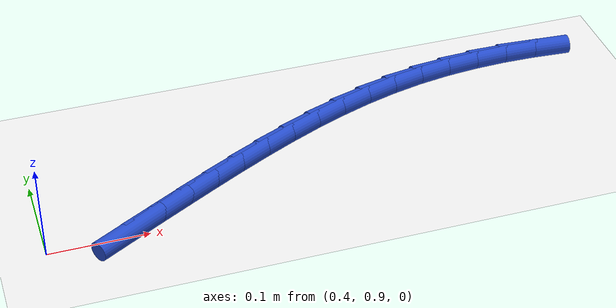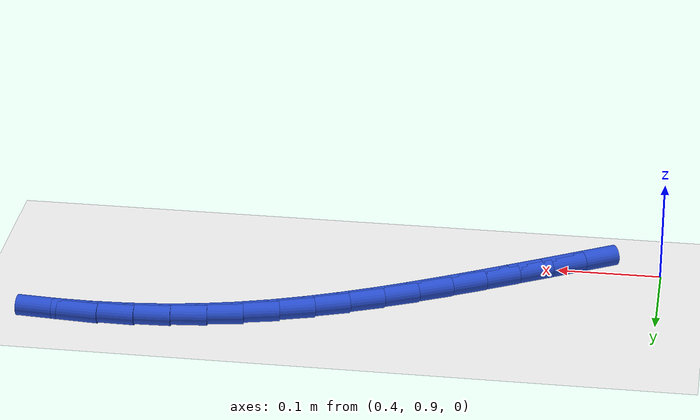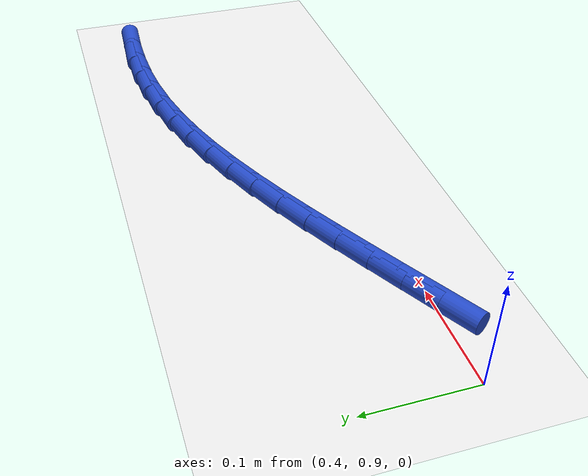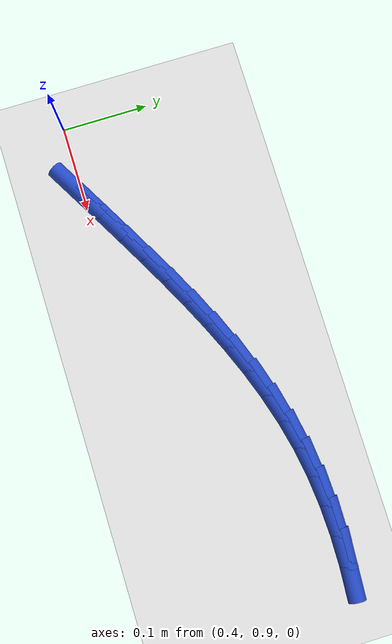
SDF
<sdf version="1.6">
 <world name="default">
  <model name="ground_plane">
   <static>1</static>
   <link name="link">
    <collision name="collision">
     <geometry><plane><normal>0 0 1</normal><size>100 100</size></plane></geometry>
     <surface><friction><ode><mu>100</mu><mu2>50</mu2></ode></friction></surface>
    </collision>
    <visual name="visual">
     <cast_shadows>0</cast_shadows>
     <geometry><plane><normal>0 0 1</normal><size>100 100</size></plane></geometry>
     <material>
      <script><uri>file://media/materials/scripts/gazebo.material</uri><name>Gazebo/WhiteGlow</name></script>
     </material>
    </visual>
   </link>
  </model>
  <model name="line">
   <link name="link_31">
    <pose>0.4807219952025956 0.8978425012995228 0.01 0 1.57 0.5152334188689925</pose>
    <collision name="collision">
     <geometry><cylinder><radius>0.01</radius><length>0.08</length></cylinder></geometry>
    </collision>
    <visual name="visual">
     <material>
      <script><name>Gazebo/Blue</name><uri>file://media/materials/scripts/gazebo.material</uri></script>
     </material>
     <geometry><cylinder><radius>0.01</radius><length>0.08</length></cylinder></geometry>
    </visual>
   </link>
   <link name="link_32">
    <pose>0.5114015382797108 0.9152147868484983 0.01 0 1.57 0.5079189197216724</pose>
    <collision name="collision">
     <geometry><cylinder><radius>0.01</radius><length>0.08</length></cylinder></geometry>
    </collision>
    <visual name="visual">
     <material>
      <script><name>Gazebo/Blue</name><uri>file://media/materials/scripts/gazebo.material</uri></script>
     </material>
     <geometry><cylinder><radius>0.01</radius><length>0.08</length></cylinder></geometry>
    </visual>
   </link>
   <link name="link_33">
    <pose>0.5422114681492941 0.9323645081079053 0.01 0 1.57 0.5029805812934454</pose>
    <collision name="collision">
     <geometry><cylinder><radius>0.01</radius><length>0.08</length></cylinder></geometry>
    </collision>
    <visual name="visual">
     <material>
      <script><name>Gazebo/Blue</name><uri>file://media/materials/scripts/gazebo.material</uri></script>
     </material>
     <geometry><cylinder><radius>0.01</radius><length>0.08</length></cylinder></geometry>
    </visual>
   </link>
   <link name="link_34">
    <pose>0.5730522624212273 0.9493324635605214 0.01 0 1.57 0.492822098935053</pose>
    <collision name="collision">
     <geometry><cylinder><radius>0.01</radius><length>0.08</length></cylinder></geometry>
    </collision>
    <visual name="visual">
     <material>
      <script><name>Gazebo/Blue</name><uri>file://media/materials/scripts/gazebo.material</uri></script>
     </material>
     <geometry><cylinder><radius>0.01</radius><length>0.08</length></cylinder></geometry>
    </visual>
   </link>
   <link name="link_35">
    <pose>0.6039614878840294 0.9659312930227029 0.01 0 1.57 0.47595645030181616</pose>
    <collision name="collision">
     <geometry><cylinder><radius>0.01</radius><length>0.08</length></cylinder></geometry>
    </collision>
    <visual name="visual">
     <material>
      <script><name>Gazebo/Blue</name><uri>file://media/materials/scripts/gazebo.material</uri></script>
     </material>
     <geometry><cylinder><radius>0.01</radius><length>0.08</length></cylinder></geometry>
    </visual>
   </link>
   <link name="link_36">
    <pose>0.6350017367816518 0.9819319862360545 0.01 0 1.57 0.45222671723746927</pose>
    <collision name="collision">
     <geometry><cylinder><radius>0.01</radius><length>0.08</length></cylinder></geometry>
    </collision>
    <visual name="visual">
     <material>
      <script><name>Gazebo/Blue</name><uri>file://media/materials/scripts/gazebo.material</uri></script>
     </material>
     <geometry><cylinder><radius>0.01</radius><length>0.08</length></cylinder></geometry>
    </visual>
   </link>
   <link name="link_37">
    <pose>0.6662356013580458 0.9971055329421803 0.01 0 1.57 0.4214496296331358</pose>
    <collision name="collision">
     <geometry><cylinder><radius>0.01</radius><length>0.08</length></cylinder></geometry>
    </collision>
    <visual name="visual">
     <material>
      <script><name>Gazebo/Blue</name><uri>file://media/materials/scripts/gazebo.material</uri></script>
     </material>
     <geometry><cylinder><radius>0.01</radius><length>0.08</length></cylinder></geometry>
    </visual>
   </link>
   <link name="link_38">
    <pose>0.6977256738571628 1.0112229228826846 0.01 0 1.57 0.383448130057976</pose>
    <collision name="collision">
     <geometry><cylinder><radius>0.01</radius><length>0.08</length></cylinder></geometry>
    </collision>
    <visual name="visual">
     <material>
      <script><name>Gazebo/Blue</name><uri>file://media/materials/scripts/gazebo.material</uri></script>
     </material>
     <geometry><cylinder><radius>0.01</radius><length>0.08</length></cylinder></geometry>
    </visual>
   </link>
   <link name="link_39">
    <pose>0.7295345465229549 1.0240551457991727 0.01 0 1.57 0.3380980717340698</pose>
    <collision name="collision">
     <geometry><cylinder><radius>0.01</radius><length>0.08</length></cylinder></geometry>
    </collision>
    <visual name="visual">
     <material>
      <script><name>Gazebo/Blue</name><uri>file://media/materials/scripts/gazebo.material</uri></script>
     </material>
     <geometry><cylinder><radius>0.01</radius><length>0.08</length></cylinder></geometry>
    </visual>
   </link>
   <link name="link_40">
    <pose>0.7617248115993724 1.0353731914332478 0.01 0 1.57 0.2853899355566183</pose>
    <collision name="collision">
     <geometry><cylinder><radius>0.01</radius><length>0.08</length></cylinder></geometry>
    </collision>
    <visual name="visual">
     <material>
      <script><name>Gazebo/Blue</name><uri>file://media/materials/scripts/gazebo.material</uri></script>
     </material>
     <geometry><cylinder><radius>0.01</radius><length>0.08</length></cylinder></geometry>
    </visual>
   </link>
   <link name="link_41">
    <pose>0.7943590613303679 1.0449480495265153 0.01 0 1.57 0.22550289226012357</pose>
    <collision name="collision">
     <geometry><cylinder><radius>0.01</radius><length>0.08</length></cylinder></geometry>
    </collision>
    <visual name="visual">
     <material>
      <script><name>Gazebo/Blue</name><uri>file://media/materials/scripts/gazebo.material</uri></script>
     </material>
     <geometry><cylinder><radius>0.01</radius><length>0.08</length></cylinder></geometry>
    </visual>
   </link>
   <link name="link_42">
    <pose>0.8274998879598919 1.0525507098205793 0.01 0 1.57 0.16003872639094327</pose>
    <collision name="collision">
     <geometry><cylinder><radius>0.01</radius><length>0.08</length></cylinder></geometry>
    </collision>
    <visual name="visual">
     <material>
      <script><name>Gazebo/Blue</name><uri>file://media/materials/scripts/gazebo.material</uri></script>
     </material>
     <geometry><cylinder><radius>0.01</radius><length>0.08</length></cylinder></geometry>
    </visual>
   </link>
   <link name="link_43">
    <pose>0.8611893692728201 1.057988838805704 0.01 0 1.57 0.09652674588150013</pose>
    <collision name="collision">
     <geometry><cylinder><radius>0.01</radius><length>0.08</length></cylinder></geometry>
    </collision>
    <visual name="visual">
     <material>
      <script><name>Gazebo/Blue</name><uri>file://media/materials/scripts/gazebo.material</uri></script>
     </material>
     <geometry><cylinder><radius>0.01</radius><length>0.08</length></cylinder></geometry>
    </visual>
   </link>
   <link name="link_44">
    <pose>0.8953432967875705 1.0612958837074293 0.01 0 1.57 0.03754103086216427</pose>
    <collision name="collision">
     <geometry><cylinder><radius>0.01</radius><length>0.08</length></cylinder></geometry>
    </collision>
    <visual name="visual">
     <material>
      <script><name>Gazebo/Blue</name><uri>file://media/materials/scripts/gazebo.material</uri></script>
     </material>
     <geometry><cylinder><radius>0.01</radius><length>0.08</length></cylinder></geometry>
    </visual>
   </link>
   <link name="link_45">
    <pose>0.9298294456153159 1.0625911378217943 0.01 0 1.57 -0.01721204589838933</pose>
    <collision name="collision">
     <geometry><cylinder><radius>0.01</radius><length>0.08</length></cylinder></geometry>
    </collision>
    <visual name="visual">
     <material>
      <script><name>Gazebo/Blue</name><uri>file://media/materials/scripts/gazebo.material</uri></script>
     </material>
     <geometry><cylinder><radius>0.01</radius><length>0.08</length></cylinder></geometry>
    </visual>
   </link>
   <link name="link_46">
    <pose>0.9645154977428514 1.0619940609371339 0.01 0 1.57 -0.06808739640966668</pose>
    <collision name="collision">
     <geometry><cylinder><radius>0.01</radius><length>0.08</length></cylinder></geometry>
    </collision>
    <visual name="visual">
     <material>
      <script><name>Gazebo/Blue</name><uri>file://media/materials/scripts/gazebo.material</uri></script>
     </material>
     <geometry><cylinder><radius>0.01</radius><length>0.08</length></cylinder></geometry>
    </visual>
   </link>
  </model>
 </world>
</sdf>
